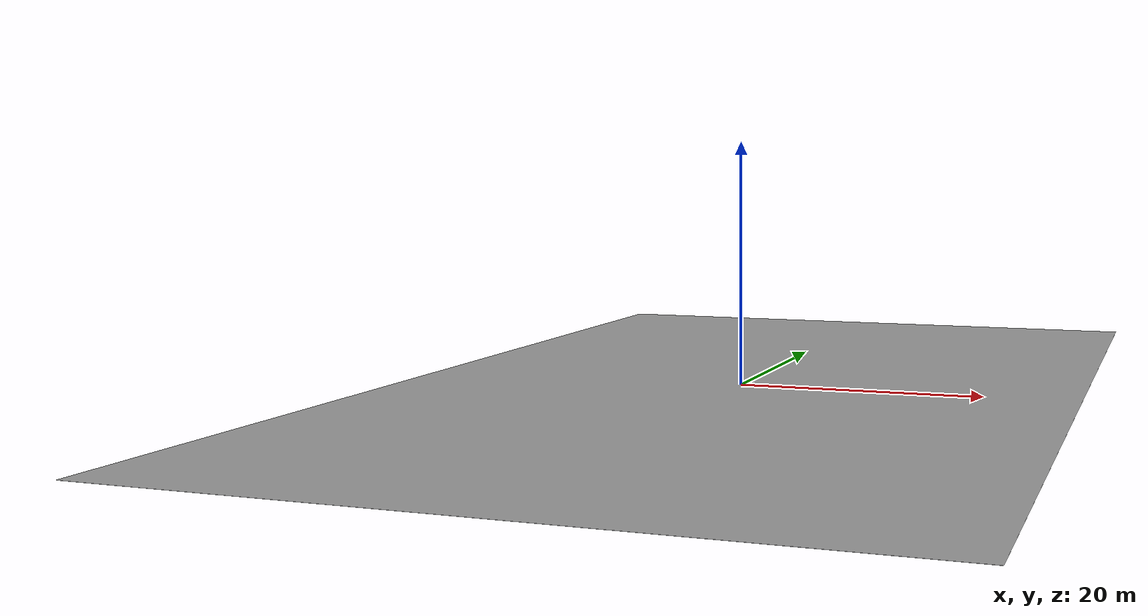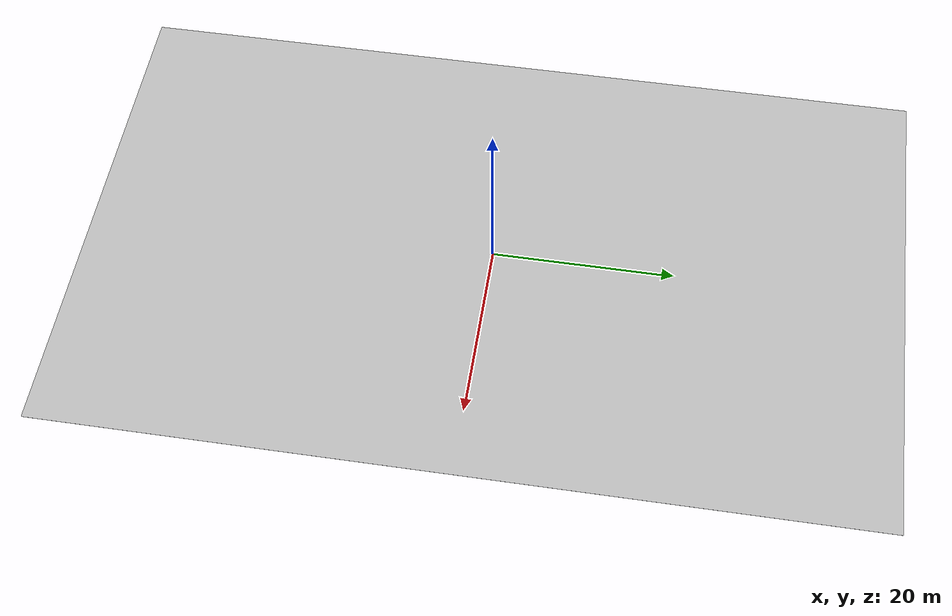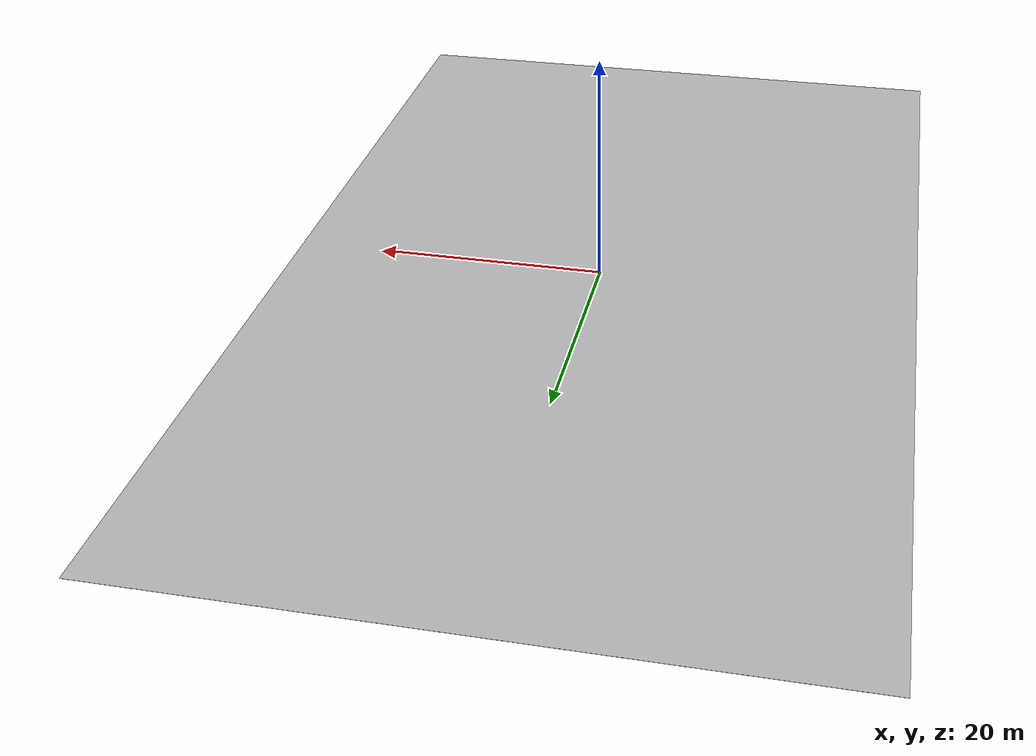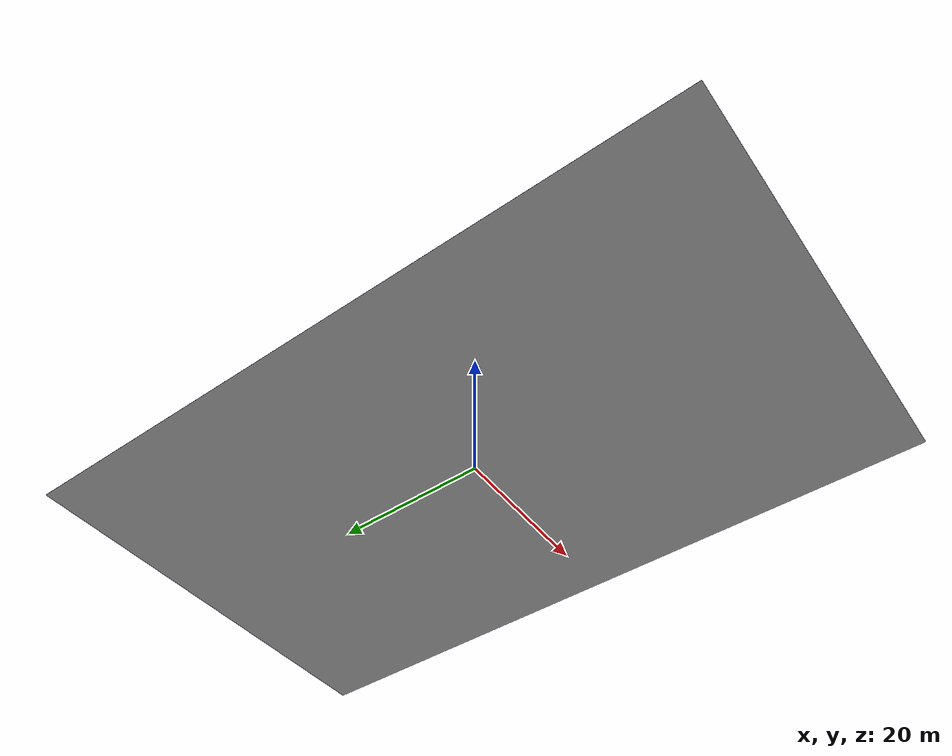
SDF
<?xml version="1.0" encoding="UTF-8"?>
<sdf version="1.4">
   <model name="asphalt_ground_plane">
      <static>true</static>
      <link name="link">
         <collision name="collision">
            <geometry>
               <box>
                  <size>55 90 0.01</size>
               </box>
            </geometry>
            <surface>
               <friction>
                  <ode>
                     <mu>100</mu>
                     <mu2>50</mu2>
                  </ode>
               </friction>
            </surface>
         </collision>
         <visual name="visual">
            <cast_shadows>false</cast_shadows>
            <geometry>
               <box>
                  <size>55 90 0.01</size>
               </box>
            </geometry>
            <material>
               <script>
                  <uri>model://asphalt_ground_plane/materials/scripts</uri>
                  <uri>model://asphalt_ground_plane/materials/textures/</uri>
                  <name>AsphaltGroundPlane/Image</name>
               </script>
            </material>
         </visual>
      </link>
   </model>
</sdf>
